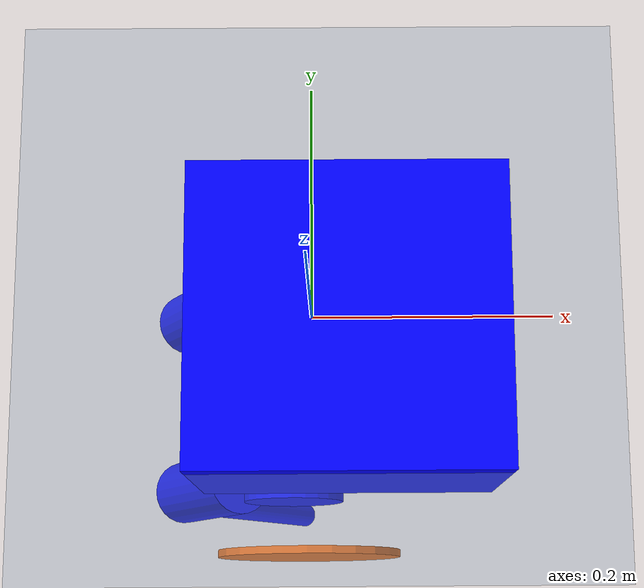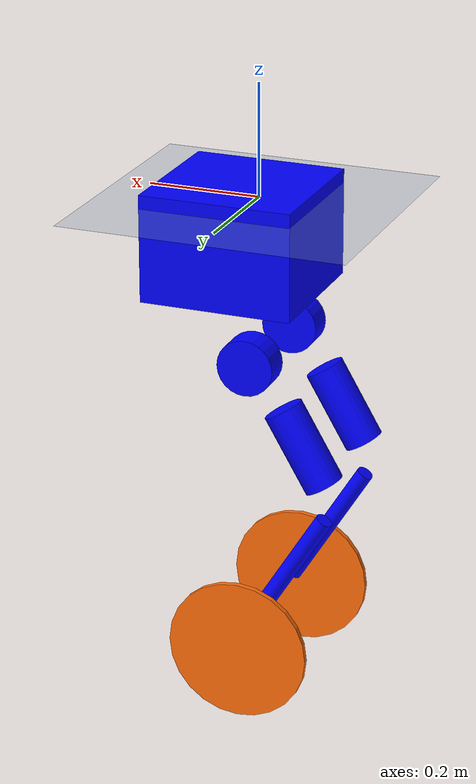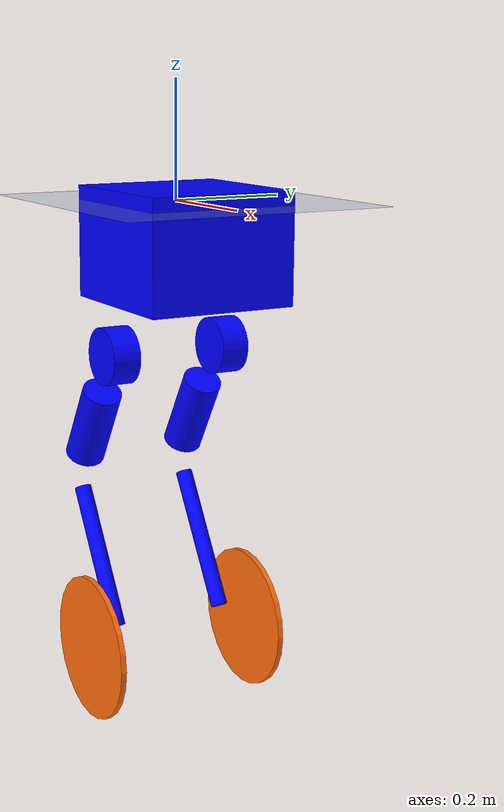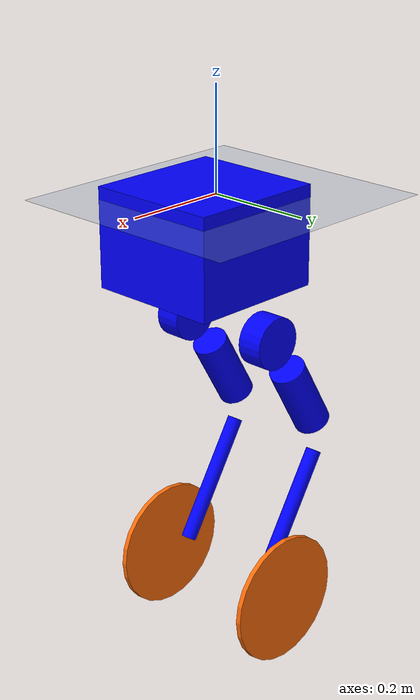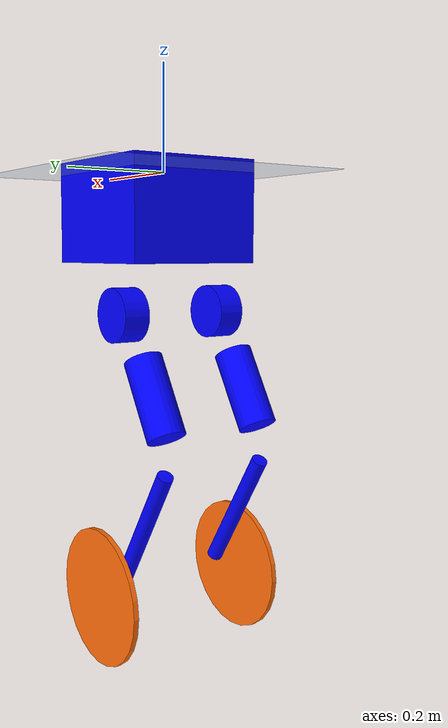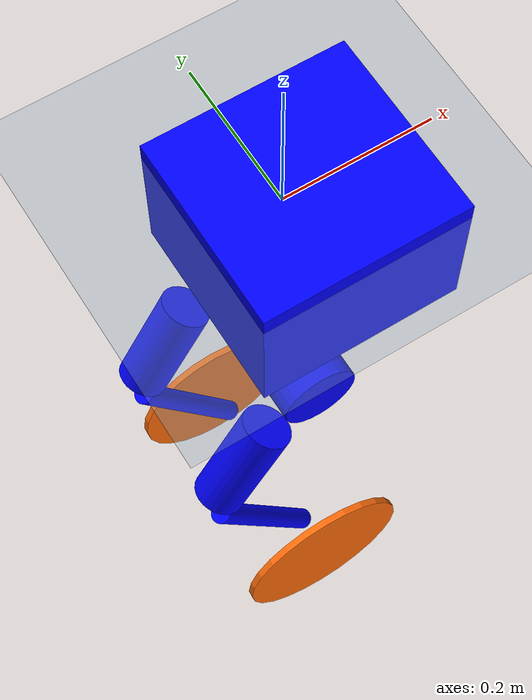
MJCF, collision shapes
<mujoco model="wheel_biped">
    <compiler angle="radian" meshdir="../meshes/" />
    <size njmax="500" nconmax="100" />

    <default>
        <light castshadow="false" diffuse="1 1 1" />
        <camera fovy="60"/>
        <default class="visual">
            <geom contype="0" conaffinity="0" group="1" type="mesh" rgba="0.9 0.9 0.9 1.0"/>
        </default>
        <joint armature="0.01" damping="0.1"/>
        <geom contype="1" conaffinity="1" condim="3" friction="0.6 0.005 0.0001" rgba="0.5 0.6 0.7 0.0" margin="0.001" group="0" />
    </default>
    <visual>
        <rgba com="0.502 1.0 0 0.5" contactpoint="1.0 1.0 0.6 0.4" contactforce="0.2 0.98 0.2 0.8"/>
        <scale com="0.2" forcewidth="0.05" contactwidth="0.10" contactheight="0.04"/>
    </visual>

    <asset>
        <mesh name="base_Link" file="base_Link.STL" />
        <mesh name="abad_L_Link" file="abad_L_Link.STL" />
        <mesh name="hip_L_Link" file="hip_L_Link.STL" />
        <mesh name="knee_L_Link" file="knee_L_Link.STL" />
        <mesh name="wheel_L_Link" file="wheel_L_Link.STL" />
        <mesh name="abad_R_Link" file="abad_R_Link.STL" />
        <mesh name="hip_R_Link" file="hip_R_Link.STL" />
        <mesh name="knee_R_Link" file="knee_R_Link.STL" />
        <mesh name="wheel_R_Link" file="wheel_R_Link.STL" />
    </asset>

    <asset>
        <texture type='skybox' builtin='gradient' width='512' height='512' rgb1="1.0 1.0 1.0" rgb2="1.0 1.0 1.0"/>
        <texture name="texplane" type="2d" builtin="checker" rgb1="0.35 0.35 0.35" rgb2="0.55 0.55 0.55" width="512" height="512" mark="cross" markrgb=".8 .8 .8"/>
        <material name="matplane" reflectance="0.0" texture="texplane" texrepeat="1 1" texuniform="true"/>
    </asset>
        <option timestep="0.001" noslip_iterations="10"/>

    <keyframe>
        <!-- torso pos; torso quat; left leg (abad, hip, knee wheel) ; right leg -->
        <!-- initiail pose without the object -->
        <key name="0" qpos="0 0 0.92   1 0 0 0   0 -0.1 0 0   0 -0.1 0 0" />
        <!-- for lqr starting pos -->
        <!-- calibration pose without the object -->
        <key name="1" qpos="0.1 0 0.8   1 0 0 0   0 -0.53 1.09 0   0 -0.53 1.09 0" />
        <!-- calibration pose from the real robot -->
        <key name="2" qpos="0.1 0 0.8   1 0 0 0   0 -0.436 0.826 0   0 -0.477 0.887  0" />

    </keyframe>

    <equality>
        <weld name="fix_torso" body1="base_Link" relpose="0 0 -.82 1 0 0 0" solimp="0.9 0.95 0.001 0.5 2" solref="0.002 1"/>
    </equality>

    <worldbody>
        <geom name="floor" rgba="0.5 0.6 0.7 1" pos="0 0 0" size="0 0 0.25" type="plane" material="matplane" condim="3"/>
        <camera name="track" mode="trackcom" pos="0 -2.3 1.6" xyaxes="1 0 0 0 0.707 0.707"/>
        <light directional="true" diffuse=".8 .8 .8" pos="0 0 10" dir="0 0 -10"/>

        <body name="base_Link" pos="0 0 0">
            <inertial pos="0.0457123 0.000139854 -0.163809" quat="0.972578 -0.00615364 -0.232461 0.00398682" mass="9.595" diaginertia="0.154712 0.11093 0.0846371" />
            <joint type="free" limited="false" damping="0.0000" stiffness="0.0000" armature="0"/>
            <site name="imu" pos="0 0 0"/>
            <geom class="visual" rgba="0.79216 0.81961 0.93333 1" mesh="base_Link" />
            <geom name="base_collision" size="0.135 0.13 0.095" pos="0.03 0 -0.072" type="box" rgba="0 0 1 0" />

            <body name="abad_L_Link" pos="0.05556 0.105 -0.2602">
                <inertial pos="-0.06977 0.04479 0.00057" quat="0.595024 0.579772 0.394141 0.393019" mass="1.469" diaginertia="0.00252289 0.00208104 0.00139163" />
                <joint name="abad_L_Joint" pos="0 0 0" axis="1 0 0" limited="true" range="-0.38397 1.39626" />
                <geom class="visual" rgba="0.79216 0.81961 0.93333 1" mesh="abad_L_Link" />
                <geom name="abad_L_collision" type="cylinder" pos="-0.08 0 0" euler="1.57 0 0" size="0.05 0.025" rgba="0 0 1 0" />

                <body name="hip_L_Link" pos="-0.077 0.0205 0">
                    <inertial pos="-0.02869 -0.0477 -0.03992" quat="0.853885 0.192797 0.226903 0.426877" mass="2.3" diaginertia="0.0233264 0.0230229 0.00277548" />
                    <joint name="hip_L_Joint" pos="0 0 0" axis="0 1 0" limited="true" range="-1.01229 1.39626" />
                    <geom class="visual" rgba="1 1 1 1" mesh="hip_L_Link" />
                    <geom name="hip_L_collision" type="cylinder" pos="-0.1 -0.025 -0.14" euler="0 0.53 0" size="0.035 0.075" rgba="0 0 1 0" />

                    <body name="knee_L_Link" pos="-0.15 -0.0205 -0.25981">
                        <inertial pos="0.11913 0.01106 -0.20363" quat="0.687012 -0.159981 -0.201582 0.679548" mass="1.49" diaginertia="0.0177107 0.0171855 0.001015" />
                        <joint name="knee_L_Joint" pos="0 0 0" axis="0 1 0" limited="true" range="-1.36136 0.872665" />
                        <geom class="visual" rgba="0.79216 0.81961 0.93333 1" mesh="knee_L_Link" />
                        <geom name="knee_L_collision" type="cylinder" pos="0.078 0 -0.12" euler="0 -0.55 0" size="0.015 0.13" rgba ="0 0 1 0"/>

                        <body name="wheel_L_Link" pos="0.15 0.0435 -0.25981">
                            <inertial pos="3e-05 0.00807 -2e-05" quat="0.683013 0.183016 0.183017 0.683011" mass="1.08" diaginertia="0.00974272 0.00515568 0.00515344" />
                            <joint name="wheel_L_Joint" pos="0 0 0" axis="0 1 0" limited="true" range="-1000000 1000000" frictionloss="0.01" />
                            <geom class="visual" rgba="0.26667 0.26667 0.26667 1" mesh="wheel_L_Link" />
                            <geom name="wheel_L_collision" pos="0.0 0.008 0.0" size="0.127 0.005" quat="0.707107 0.707107 0 0" type="cylinder" rgba="1 0.423529 0.0392157 1"   friction="0.8 0.005 0.0001" />
                        </body>
                    </body>
                </body>
            </body>
            <body name="abad_R_Link" pos="0.05556 -0.105 -0.2602">
                <inertial pos="-0.06977 -0.04479 0.00057" quat="0.393019 0.394141 0.579772 0.595024" mass="1.469" diaginertia="0.00252289 0.00208104 0.00139163" />
                <joint name="abad_R_Joint" pos="0 0 0" axis="1 0 0" limited="true" range="-1.39626 0.38397" />
                <geom class="visual" rgba="0.79216 0.81961 0.93333 1" mesh="abad_R_Link" />
                <geom name="abad_R_collision" type="cylinder" pos="-0.08 0 0" euler="1.57 0 0" size="0.05 0.025" rgba="0 0 1 0" />

                <body name="hip_R_Link" pos="-0.077 -0.0205 0">
                    <inertial pos="-0.02869 0.0477 -0.03992" quat="0.426877 0.226903 0.192797 0.853885" mass="2.3" diaginertia="0.0233264 0.0230229 0.00277548" />
                    <joint name="hip_R_Joint" pos="0 0 0" axis="0 1 0" limited="true" range="-1.01229 1.39626" />
                    <geom class="visual" rgba="1 1 1 1" mesh="hip_R_Link" />
                    <geom name="hip_R_collision" type="cylinder" pos="-0.10 0.025 -0.14" euler="0 0.53 0" size="0.035 0.075" rgba="0 0 1 0" />

                    <body name="knee_R_Link" pos="-0.15 0.0205 -0.25981">
                        <inertial pos="0.11913 -0.01106 -0.20363" quat="0.679548 -0.201582 -0.159981 0.687012" mass="1.49" diaginertia="0.0177107 0.0171855 0.001015" />
                        <joint name="knee_R_Joint" pos="0 0 0" axis="0 1 0" limited="true" range="-1.36136 0.872665" />
                        <geom class="visual" rgba="0.79216 0.81961 0.93333 1" mesh="knee_R_Link" />
                        <geom name="knee_R_collision" type="cylinder" pos="0.078 0 -0.12" euler="0 -0.55 0" size="0.015 0.13" rgba ="0 0 1 0"/>

                        <body name="wheel_R_Link" pos="0.15 -0.0435 -0.25981">
                            <inertial pos="3e-05 -0.00807 -2e-05" quat="0.683011 0.183017 0.183016 0.683013" mass="1.08" diaginertia="0.00974272 0.00515568 0.00515344" />
                            <joint name="wheel_R_Joint" pos="0 0 0" axis="0 1 0" limited="true" range="-1000000 1000000" frictionloss="0.01" />
                            <geom class="visual" rgba="0.26667 0.26667 0.26667 1" mesh="wheel_R_Link" />
                            <geom name="wheel_R_collision" pos="0.0 -0.008 0.0" size="0.127 0.005" quat="0.707107 0.707107 0 0" type="cylinder" rgba="1 0.423529 0.0392157 1"  friction="0.8 0.005 0.0001" />
                        </body>
                    </body>
                </body>
            </body>
        </body>
    </worldbody>

    <actuator>
        <motor name="abad_L_Joint"   gear="1"  joint="abad_L_Joint"  ctrllimited='true' ctrlrange='-80 80'/>
        <motor name="hip_L_Joint"    gear="1"  joint="hip_L_Joint"   ctrllimited='true' ctrlrange='-80 80'/>
        <motor name="knee_L_Joint"   gear="1"  joint="knee_L_Joint"  ctrllimited='true' ctrlrange='-80 80'/>
        <motor name="wheel_L_Joint"  gear="1"  joint="wheel_L_Joint" ctrllimited='true' ctrlrange='-40 40'/>
        <motor name="abad_R_Joint"   gear="1"  joint="abad_R_Joint"  ctrllimited='true' ctrlrange='-80 80' />
        <motor name="hip_R_Joint"    gear="1"  joint="hip_R_Joint"   ctrllimited='true' ctrlrange='-80 80' />
        <motor name="knee_R_Joint"   gear="1"  joint="knee_R_Joint"  ctrllimited='true' ctrlrange='-80 80'/>
        <motor name="wheel_R_Joint"  gear="1"  joint="wheel_R_Joint" ctrllimited='true' ctrlrange='-40 40'/>
    </actuator>

    <sensor>
        <jointpos name="abad_L_Joint_pos"    joint="abad_L_Joint" noise="0.001"/>
        <jointpos name="hip_L_Joint_pos"     joint="hip_L_Joint" noise="0.001"/>
        <jointpos name="knee_L_Joint_pos"    joint="knee_L_Joint" noise="0.001"/>
        <jointpos name="wheel_L_Joint_pos"   joint="wheel_L_Joint" noise="0.001"/>
        <jointpos name="abad_R_Joint_pos"    joint="abad_R_Joint" noise="0.001"/>
        <jointpos name="hip_R_Joint_pos"     joint="hip_R_Joint" noise="0.001"/>
        <jointpos name="knee_R_Joint_pos"    joint="knee_R_Joint" noise="0.001"/>
        <jointpos name="wheel_R_Joint_pos"   joint="wheel_R_Joint" noise="0.001"/>

        <jointvel name="abad_L_Joint_vel"    joint="abad_L_Joint" noise="0.01"/>
        <jointvel name="hip_L_Joint_vel"     joint="hip_L_Joint" noise="0.01"/>
        <jointvel name="knee_L_Joint_vel"    joint="knee_L_Joint" noise="0.01"/>
        <jointvel name="wheel_L_Joint_vel"   joint="wheel_L_Joint" noise="0.01"/>
        <jointvel name="abad_R_Joint_vel"    joint="abad_R_Joint" noise="0.01"/>
        <jointvel name="hip_R_Joint_vel"     joint="hip_R_Joint" noise="0.01"/>
        <jointvel name="knee_R_Joint_vel"    joint="knee_R_Joint" noise="0.01"/>
        <jointvel name="wheel_R_Joint_vel"   joint="wheel_R_Joint" noise="0.01"/>

        <jointactuatorfrc name="abad_L_Joint_torque"    joint="abad_L_Joint" noise="0.01"/>
        <jointactuatorfrc name="hip_L_Joint_torque"     joint="hip_L_Joint" noise="0.01"/>
        <jointactuatorfrc name="knee_L_Joint_torque"    joint="knee_L_Joint" noise="0.01"/>
        <jointactuatorfrc name="wheel_L_Joint_torque"   joint="wheel_L_Joint" noise="0.01"/>
        <jointactuatorfrc name="abad_R_Joint_torque"    joint="abad_R_Joint" noise="0.01"/>
        <jointactuatorfrc name="hip_R_Joint_torque"     joint="hip_R_Joint" noise="0.01"/>
        <jointactuatorfrc name="knee_R_Joint_torque"    joint="knee_R_Joint" noise="0.01"/>
        <jointactuatorfrc name="wheel_R_Joint_torque"   joint="wheel_R_Joint" noise="0.01"/>

        <framequat name="imu_quat" objtype="site" objname="imu" noise="0.001"/>
        <gyro name="imu_gyro" site="imu" noise="0.01"/>
        <accelerometer name="imu_acc" site="imu" noise="0.01"/>

        <framepos name="frame_pos" objtype="site" objname="imu" />
        <framelinvel name="frame_vel" objtype="site" objname="imu" />

    </sensor>
</mujoco>
